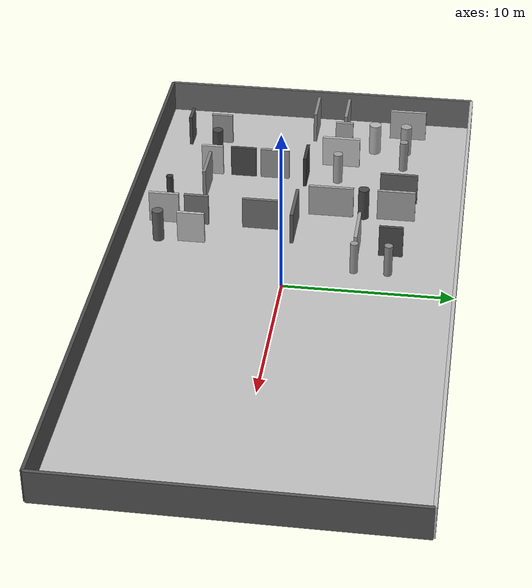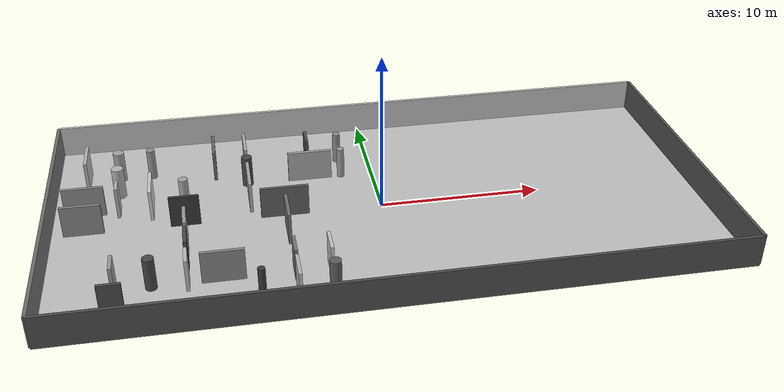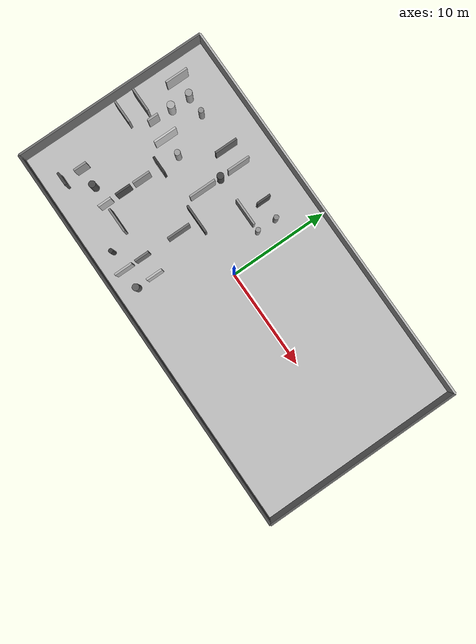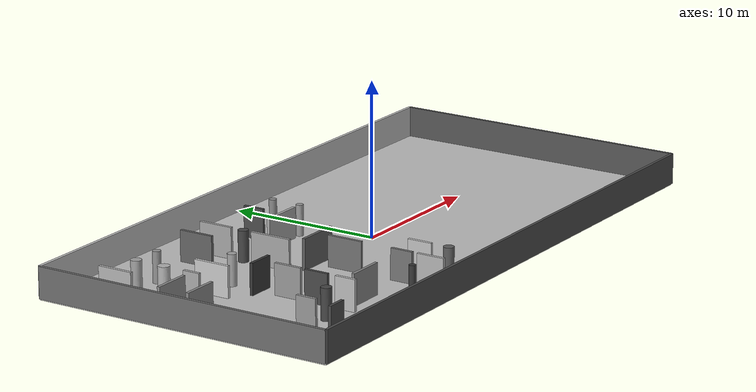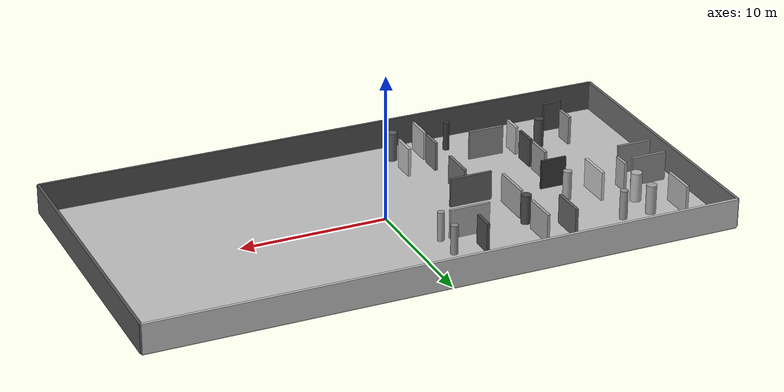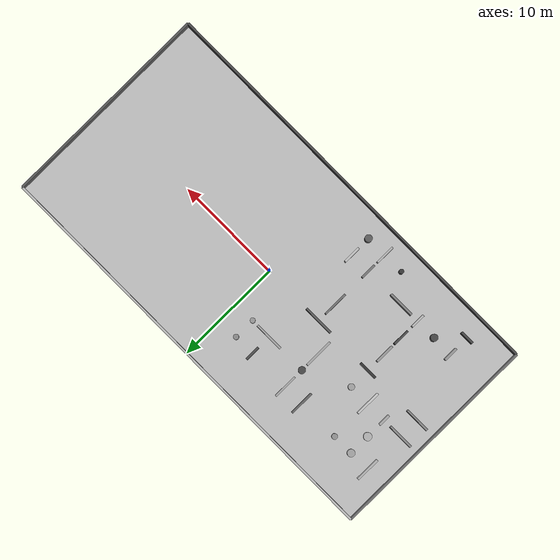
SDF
<sdf version="1.7">
 <world name="default">
  <model name="ground_plane">
   <static>true</static>
   <link name="link">
    <pose>0.0 0.0 -0.05 0 0 0</pose>
    <visual name="visual">
     <material>
      <ambient>0.7535816217733602 0.7535816217733602 0.7535816217733602 1</ambient>
      <diffuse>0.7535816217733602 0.7535816217733602 0.7535816217733602 1</diffuse>
     </material>
     <geometry><box><size>40.0 20.0 0.1</size></box></geometry>
    </visual>
    <collision name="collision">
     <geometry><box><size>40.0 20.0 0.1</size></box></geometry>
     <surface>
      <friction><ode><mu>100</mu><mu2>50.0</mu2><slip1>0.0</slip1><slip2>0.0</slip2></ode></friction>
      <contact><ode><kp>10000.0</kp><kd>100.0</kd></ode></contact>
     </surface>
    </collision>
   </link>
  </model>
  <model name="pn_wall_0">
   <static>true</static>
   <link name="link">
    <pose>-20.0 0.0 1.0 0 0 0</pose>
    <visual name="visual">
     <material>
      <ambient>0.4286124139974629 0.4286124139974629 0.4286124139974629 1</ambient>
      <diffuse>0.4286124139974629 0.4286124139974629 0.4286124139974629 1</diffuse>
     </material>
     <geometry><box><size>0.2 20.0 2.0</size></box></geometry>
    </visual>
    <collision name="collision">
     <geometry><box><size>0.2 20.0 2.0</size></box></geometry>
     <surface>
      <friction><ode><mu>100</mu><mu2>50.0</mu2><slip1>0.0</slip1><slip2>0.0</slip2></ode></friction>
      <contact><ode><kp>10000.0</kp><kd>100.0</kd></ode></contact>
     </surface>
    </collision>
   </link>
  </model>
  <model name="pn_wall_1">
   <static>true</static>
   <link name="link">
    <pose>20.0 0.0 1.0 0 0 0</pose>
    <visual name="visual">
     <material>
      <ambient>0.33843151178628517 0.33843151178628517 0.33843151178628517 1</ambient>
      <diffuse>0.33843151178628517 0.33843151178628517 0.33843151178628517 1</diffuse>
     </material>
     <geometry><box><size>0.2 20.0 2.0</size></box></geometry>
    </visual>
    <collision name="collision">
     <geometry><box><size>0.2 20.0 2.0</size></box></geometry>
     <surface>
      <friction><ode><mu>100</mu><mu2>50.0</mu2><slip1>0.0</slip1><slip2>0.0</slip2></ode></friction>
      <contact><ode><kp>10000.0</kp><kd>100.0</kd></ode></contact>
     </surface>
    </collision>
   </link>
  </model>
  <model name="pn_wall_2">
   <static>true</static>
   <link name="link">
    <pose>0.0 -10.0 1.0 0 0 0</pose>
    <visual name="visual">
     <material>
      <ambient>0.29962203458848113 0.29962203458848113 0.29962203458848113 1</ambient>
      <diffuse>0.29962203458848113 0.29962203458848113 0.29962203458848113 1</diffuse>
     </material>
     <geometry><box><size>40.0 0.2 2.0</size></box></geometry>
    </visual>
    <collision name="collision">
     <geometry><box><size>40.0 0.2 2.0</size></box></geometry>
     <surface>
      <friction><ode><mu>100</mu><mu2>50.0</mu2><slip1>0.0</slip1><slip2>0.0</slip2></ode></friction>
      <contact><ode><kp>10000.0</kp><kd>100.0</kd></ode></contact>
     </surface>
    </collision>
   </link>
  </model>
  <model name="pn_wall_3">
   <static>true</static>
   <link name="link">
    <pose>0.0 10.0 1.0 0 0 0</pose>
    <visual name="visual">
     <material>
      <ambient>0.7483000608636279 0.7483000608636279 0.7483000608636279 1</ambient>
      <diffuse>0.7483000608636279 0.7483000608636279 0.7483000608636279 1</diffuse>
     </material>
     <geometry><box><size>40.0 0.2 2.0</size></box></geometry>
    </visual>
    <collision name="collision">
     <geometry><box><size>40.0 0.2 2.0</size></box></geometry>
     <surface>
      <friction><ode><mu>100</mu><mu2>50.0</mu2><slip1>0.0</slip1><slip2>0.0</slip2></ode></friction>
      <contact><ode><kp>10000.0</kp><kd>100.0</kd></ode></contact>
     </surface>
    </collision>
   </link>
  </model>
  <model name="pn_wall_4">
   <static>true</static>
   <link name="link">
    <pose>-18.0 0.0 1.0 0 0 0</pose>
    <visual name="visual">
     <material>
      <ambient>0.5318356854175905 0.5318356854175905 0.5318356854175905 1</ambient>
      <diffuse>0.5318356854175905 0.5318356854175905 0.5318356854175905 1</diffuse>
     </material>
     <geometry><box><size>2.3802653146305346 0.2 2.0</size></box></geometry>
    </visual>
    <collision name="collision">
     <geometry><box><size>2.3802653146305346 0.2 2.0</size></box></geometry>
     <surface>
      <friction><ode><mu>100</mu><mu2>50.0</mu2><slip1>0.0</slip1><slip2>0.0</slip2></ode></friction>
      <contact><ode><kp>10000.0</kp><kd>100.0</kd></ode></contact>
     </surface>
    </collision>
   </link>
  </model>
  <model name="pn_wall_5">
   <static>true</static>
   <link name="link">
    <pose>-18.0 2.0 1.0 0 0 0</pose>
    <visual name="visual">
     <material>
      <ambient>0.5458567753851185 0.5458567753851185 0.5458567753851185 1</ambient>
      <diffuse>0.5458567753851185 0.5458567753851185 0.5458567753851185 1</diffuse>
     </material>
     <geometry><box><size>2.4632484132536256 0.2 2.0</size></box></geometry>
    </visual>
    <collision name="collision">
     <geometry><box><size>2.4632484132536256 0.2 2.0</size></box></geometry>
     <surface>
      <friction><ode><mu>100</mu><mu2>50.0</mu2><slip1>0.0</slip1><slip2>0.0</slip2></ode></friction>
      <contact><ode><kp>10000.0</kp><kd>100.0</kd></ode></contact>
     </surface>
    </collision>
   </link>
  </model>
  <model name="pn_wall_6">
   <static>true</static>
   <link name="link">
    <pose>-18.0 6.0 1.0 0 0 0</pose>
    <visual name="visual">
     <material>
      <ambient>0.7035788104757685 0.7035788104757685 0.7035788104757685 1</ambient>
      <diffuse>0.7035788104757685 0.7035788104757685 0.7035788104757685 1</diffuse>
     </material>
     <geometry><box><size>0.2 2.323161944714843 2.0</size></box></geometry>
    </visual>
    <collision name="collision">
     <geometry><box><size>0.2 2.323161944714843 2.0</size></box></geometry>
     <surface>
      <friction><ode><mu>100</mu><mu2>50.0</mu2><slip1>0.0</slip1><slip2>0.0</slip2></ode></friction>
      <contact><ode><kp>10000.0</kp><kd>100.0</kd></ode></contact>
     </surface>
    </collision>
   </link>
  </model>
  <model name="pn_wall_7">
   <static>true</static>
   <link name="link">
    <pose>-16.0 -8.0 1.0 0 0 0</pose>
    <visual name="visual">
     <material>
      <ambient>0.2899010344444406 0.2899010344444406 0.2899010344444406 1</ambient>
      <diffuse>0.2899010344444406 0.2899010344444406 0.2899010344444406 1</diffuse>
     </material>
     <geometry><box><size>1.3100988415876804 0.2 2.0</size></box></geometry>
    </visual>
    <collision name="collision">
     <geometry><box><size>1.3100988415876804 0.2 2.0</size></box></geometry>
     <surface>
      <friction><ode><mu>100</mu><mu2>50.0</mu2><slip1>0.0</slip1><slip2>0.0</slip2></ode></friction>
      <contact><ode><kp>10000.0</kp><kd>100.0</kd></ode></contact>
     </surface>
    </collision>
   </link>
  </model>
  <model name="pn_wall_8">
   <static>true</static>
   <link name="link">
    <pose>-16.0 -6.0 1.0 0 0 0</pose>
    <visual name="visual">
     <material>
      <ambient>0.5927931205535091 0.5927931205535091 0.5927931205535091 1</ambient>
      <diffuse>0.5927931205535091 0.5927931205535091 0.5927931205535091 1</diffuse>
     </material>
     <geometry><box><size>0.2 1.335021559260981 2.0</size></box></geometry>
    </visual>
    <collision name="collision">
     <geometry><box><size>0.2 1.335021559260981 2.0</size></box></geometry>
     <surface>
      <friction><ode><mu>100</mu><mu2>50.0</mu2><slip1>0.0</slip1><slip2>0.0</slip2></ode></friction>
      <contact><ode><kp>10000.0</kp><kd>100.0</kd></ode></contact>
     </surface>
    </collision>
   </link>
  </model>
  <model name="pn_wall_9">
   <static>true</static>
   <link name="link">
    <pose>-16.0 2.0 1.0 0 0 0</pose>
    <visual name="visual">
     <material>
      <ambient>0.6705885809112593 0.6705885809112593 0.6705885809112593 1</ambient>
      <diffuse>0.6705885809112593 0.6705885809112593 0.6705885809112593 1</diffuse>
     </material>
     <geometry><box><size>0.2 1.1189982908937144 2.0</size></box></geometry>
    </visual>
    <collision name="collision">
     <geometry><box><size>0.2 1.1189982908937144 2.0</size></box></geometry>
     <surface>
      <friction><ode><mu>100</mu><mu2>50.0</mu2><slip1>0.0</slip1><slip2>0.0</slip2></ode></friction>
      <contact><ode><kp>10000.0</kp><kd>100.0</kd></ode></contact>
     </surface>
    </collision>
   </link>
  </model>
  <model name="pn_pillar_10">
   <static>true</static>
   <link name="link">
    <pose>-16.0 4.0 1.0 0 0 0</pose>
    <visual name="visual">
     <material>
      <ambient>0.7046275216407931 0.7046275216407931 0.7046275216407931 1</ambient>
      <diffuse>0.7046275216407931 0.7046275216407931 0.7046275216407931 1</diffuse>
     </material>
     <geometry><cylinder><radius>0.3733783398297966</radius><length>2.0</length></cylinder></geometry>
    </visual>
    <collision name="collision">
     <geometry><cylinder><radius>0.3733783398297966</radius><length>2.0</length></cylinder></geometry>
     <surface>
      <friction><ode><mu>100</mu><mu2>50.0</mu2><slip1>0.0</slip1><slip2>0.0</slip2></ode></friction>
      <contact><ode><kp>10000.0</kp><kd>100.0</kd></ode></contact>
     </surface>
    </collision>
   </link>
  </model>
  <model name="pn_pillar_11">
   <static>true</static>
   <link name="link">
    <pose>-16.0 6.0 1.0 0 0 0</pose>
    <visual name="visual">
     <material>
      <ambient>0.6394040695213623 0.6394040695213623 0.6394040695213623 1</ambient>
      <diffuse>0.6394040695213623 0.6394040695213623 0.6394040695213623 1</diffuse>
     </material>
     <geometry><cylinder><radius>0.3452475970390524</radius><length>2.0</length></cylinder></geometry>
    </visual>
    <collision name="collision">
     <geometry><cylinder><radius>0.3452475970390524</radius><length>2.0</length></cylinder></geometry>
     <surface>
      <friction><ode><mu>100</mu><mu2>50.0</mu2><slip1>0.0</slip1><slip2>0.0</slip2></ode></friction>
      <contact><ode><kp>10000.0</kp><kd>100.0</kd></ode></contact>
     </surface>
    </collision>
   </link>
  </model>
  <model name="pn_pillar_12">
   <static>true</static>
   <link name="link">
    <pose>-14.0 -6.0 1.0 0 0 0</pose>
    <visual name="visual">
     <material>
      <ambient>0.2742605467082058 0.2742605467082058 0.2742605467082058 1</ambient>
      <diffuse>0.2742605467082058 0.2742605467082058 0.2742605467082058 1</diffuse>
     </material>
     <geometry><cylinder><radius>0.33399046066185506</radius><length>2.0</length></cylinder></geometry>
    </visual>
    <collision name="collision">
     <geometry><cylinder><radius>0.33399046066185506</radius><length>2.0</length></cylinder></geometry>
     <surface>
      <friction><ode><mu>100</mu><mu2>50.0</mu2><slip1>0.0</slip1><slip2>0.0</slip2></ode></friction>
      <contact><ode><kp>10000.0</kp><kd>100.0</kd></ode></contact>
     </surface>
    </collision>
   </link>
  </model>
  <model name="pn_wall_13">
   <static>true</static>
   <link name="link">
    <pose>-14.0 2.0 1.0 0 0 0</pose>
    <visual name="visual">
     <material>
      <ambient>0.788002958198232 0.788002958198232 0.788002958198232 1</ambient>
      <diffuse>0.788002958198232 0.788002958198232 0.788002958198232 1</diffuse>
     </material>
     <geometry><box><size>0.2 2.377703024459291 2.0</size></box></geometry>
    </visual>
    <collision name="collision">
     <geometry><box><size>0.2 2.377703024459291 2.0</size></box></geometry>
     <surface>
      <friction><ode><mu>100</mu><mu2>50.0</mu2><slip1>0.0</slip1><slip2>0.0</slip2></ode></friction>
      <contact><ode><kp>10000.0</kp><kd>100.0</kd></ode></contact>
     </surface>
    </collision>
   </link>
  </model>
  <model name="pn_pillar_14">
   <static>true</static>
   <link name="link">
    <pose>-14.0 6.0 1.0 0 0 0</pose>
    <visual name="visual">
     <material>
      <ambient>0.5719399527880967 0.5719399527880967 0.5719399527880967 1</ambient>
      <diffuse>0.5719399527880967 0.5719399527880967 0.5719399527880967 1</diffuse>
     </material>
     <geometry><cylinder><radius>0.2635600451012216</radius><length>2.0</length></cylinder></geometry>
    </visual>
    <collision name="collision">
     <geometry><cylinder><radius>0.2635600451012216</radius><length>2.0</length></cylinder></geometry>
     <surface>
      <friction><ode><mu>100</mu><mu2>50.0</mu2><slip1>0.0</slip1><slip2>0.0</slip2></ode></friction>
      <contact><ode><kp>10000.0</kp><kd>100.0</kd></ode></contact>
     </surface>
    </collision>
   </link>
  </model>
  <model name="pn_wall_15">
   <static>true</static>
   <link name="link">
    <pose>-12.0 -6.0 1.0 0 0 0</pose>
    <visual name="visual">
     <material>
      <ambient>0.7326681932655452 0.7326681932655452 0.7326681932655452 1</ambient>
      <diffuse>0.7326681932655452 0.7326681932655452 0.7326681932655452 1</diffuse>
     </material>
     <geometry><box><size>0.2 1.3641808842852248 2.0</size></box></geometry>
    </visual>
    <collision name="collision">
     <geometry><box><size>0.2 1.3641808842852248 2.0</size></box></geometry>
     <surface>
      <friction><ode><mu>100</mu><mu2>50.0</mu2><slip1>0.0</slip1><slip2>0.0</slip2></ode></friction>
      <contact><ode><kp>10000.0</kp><kd>100.0</kd></ode></contact>
     </surface>
    </collision>
   </link>
  </model>
  <model name="pn_wall_16">
   <static>true</static>
   <link name="link">
    <pose>-12.0 -4.0 1.0 0 0 0</pose>
    <visual name="visual">
     <material>
      <ambient>0.28754455792923955 0.28754455792923955 0.28754455792923955 1</ambient>
      <diffuse>0.28754455792923955 0.28754455792923955 0.28754455792923955 1</diffuse>
     </material>
     <geometry><box><size>0.2 1.602832591525506 2.0</size></box></geometry>
    </visual>
    <collision name="collision">
     <geometry><box><size>0.2 1.602832591525506 2.0</size></box></geometry>
     <surface>
      <friction><ode><mu>100</mu><mu2>50.0</mu2><slip1>0.0</slip1><slip2>0.0</slip2></ode></friction>
      <contact><ode><kp>10000.0</kp><kd>100.0</kd></ode></contact>
     </surface>
    </collision>
   </link>
  </model>
  <model name="pn_wall_17">
   <static>true</static>
   <link name="link">
    <pose>-12.0 -2.0 1.0 0 0 0</pose>
    <visual name="visual">
     <material>
      <ambient>0.5980038657329287 0.5980038657329287 0.5980038657329287 1</ambient>
      <diffuse>0.5980038657329287 0.5980038657329287 0.5980038657329287 1</diffuse>
     </material>
     <geometry><box><size>0.2 1.814382270298924 2.0</size></box></geometry>
    </visual>
    <collision name="collision">
     <geometry><box><size>0.2 1.814382270298924 2.0</size></box></geometry>
     <surface>
      <friction><ode><mu>100</mu><mu2>50.0</mu2><slip1>0.0</slip1><slip2>0.0</slip2></ode></friction>
      <contact><ode><kp>10000.0</kp><kd>100.0</kd></ode></contact>
     </surface>
    </collision>
   </link>
  </model>
  <model name="pn_wall_18">
   <static>true</static>
   <link name="link">
    <pose>-12.0 0.0 1.0 0 0 0</pose>
    <visual name="visual">
     <material>
      <ambient>0.21299886592869724 0.21299886592869724 0.21299886592869724 1</ambient>
      <diffuse>0.21299886592869724 0.21299886592869724 0.21299886592869724 1</diffuse>
     </material>
     <geometry><box><size>1.7896489237308992 0.2 2.0</size></box></geometry>
    </visual>
    <collision name="collision">
     <geometry><box><size>1.7896489237308992 0.2 2.0</size></box></geometry>
     <surface>
      <friction><ode><mu>100</mu><mu2>50.0</mu2><slip1>0.0</slip1><slip2>0.0</slip2></ode></friction>
      <contact><ode><kp>10000.0</kp><kd>100.0</kd></ode></contact>
     </surface>
    </collision>
   </link>
  </model>
  <model name="pn_pillar_19">
   <static>true</static>
   <link name="link">
    <pose>-12.0 2.0 1.0 0 0 0</pose>
    <visual name="visual">
     <material>
      <ambient>0.636927348681581 0.636927348681581 0.636927348681581 1</ambient>
      <diffuse>0.636927348681581 0.636927348681581 0.636927348681581 1</diffuse>
     </material>
     <geometry><cylinder><radius>0.2916834472801281</radius><length>2.0</length></cylinder></geometry>
    </visual>
    <collision name="collision">
     <geometry><cylinder><radius>0.2916834472801281</radius><length>2.0</length></cylinder></geometry>
     <surface>
      <friction><ode><mu>100</mu><mu2>50.0</mu2><slip1>0.0</slip1><slip2>0.0</slip2></ode></friction>
      <contact><ode><kp>10000.0</kp><kd>100.0</kd></ode></contact>
     </surface>
    </collision>
   </link>
  </model>
  <model name="pn_wall_20">
   <static>true</static>
   <link name="link">
    <pose>-10.0 -6.0 1.0 0 0 0</pose>
    <visual name="visual">
     <material>
      <ambient>0.5238723487917749 0.5238723487917749 0.5238723487917749 1</ambient>
      <diffuse>0.5238723487917749 0.5238723487917749 0.5238723487917749 1</diffuse>
     </material>
     <geometry><box><size>2.488883275981933 0.2 2.0</size></box></geometry>
    </visual>
    <collision name="collision">
     <geometry><box><size>2.488883275981933 0.2 2.0</size></box></geometry>
     <surface>
      <friction><ode><mu>100</mu><mu2>50.0</mu2><slip1>0.0</slip1><slip2>0.0</slip2></ode></friction>
      <contact><ode><kp>10000.0</kp><kd>100.0</kd></ode></contact>
     </surface>
    </collision>
   </link>
  </model>
  <model name="pn_wall_21">
   <static>true</static>
   <link name="link">
    <pose>-10.0 6.0 1.0 0 0 0</pose>
    <visual name="visual">
     <material>
      <ambient>0.39312229533342774 0.39312229533342774 0.39312229533342774 1</ambient>
      <diffuse>0.39312229533342774 0.39312229533342774 0.39312229533342774 1</diffuse>
     </material>
     <geometry><box><size>0.2 2.3102373996935617 2.0</size></box></geometry>
    </visual>
    <collision name="collision">
     <geometry><box><size>0.2 2.3102373996935617 2.0</size></box></geometry>
     <surface>
      <friction><ode><mu>100</mu><mu2>50.0</mu2><slip1>0.0</slip1><slip2>0.0</slip2></ode></friction>
      <contact><ode><kp>10000.0</kp><kd>100.0</kd></ode></contact>
     </surface>
    </collision>
   </link>
  </model>
  <model name="pn_pillar_22">
   <static>true</static>
   <link name="link">
    <pose>-8.0 -8.0 1.0 0 0 0</pose>
    <visual name="visual">
     <material>
      <ambient>0.22375779026859408 0.22375779026859408 0.22375779026859408 1</ambient>
      <diffuse>0.22375779026859408 0.22375779026859408 0.22375779026859408 1</diffuse>
     </material>
     <geometry><cylinder><radius>0.21314601110846346</radius><length>2.0</length></cylinder></geometry>
    </visual>
    <collision name="collision">
     <geometry><cylinder><radius>0.21314601110846346</radius><length>2.0</length></cylinder></geometry>
     <surface>
      <friction><ode><mu>100</mu><mu2>50.0</mu2><slip1>0.0</slip1><slip2>0.0</slip2></ode></friction>
      <contact><ode><kp>10000.0</kp><kd>100.0</kd></ode></contact>
     </surface>
    </collision>
   </link>
  </model>
  <model name="pn_wall_23">
   <static>true</static>
   <link name="link">
    <pose>-8.0 2.0 1.0 0 0 0</pose>
    <visual name="visual">
     <material>
      <ambient>0.6508217074220854 0.6508217074220854 0.6508217074220854 1</ambient>
      <diffuse>0.6508217074220854 0.6508217074220854 0.6508217074220854 1</diffuse>
     </material>
     <geometry><box><size>0.2 2.749182862813904 2.0</size></box></geometry>
    </visual>
    <collision name="collision">
     <geometry><box><size>0.2 2.749182862813904 2.0</size></box></geometry>
     <surface>
      <friction><ode><mu>100</mu><mu2>50.0</mu2><slip1>0.0</slip1><slip2>0.0</slip2></ode></friction>
      <contact><ode><kp>10000.0</kp><kd>100.0</kd></ode></contact>
     </surface>
    </collision>
   </link>
  </model>
  <model name="pn_pillar_24">
   <static>true</static>
   <link name="link">
    <pose>-8.0 4.0 1.0 0 0 0</pose>
    <visual name="visual">
     <material>
      <ambient>0.27659318698119 0.27659318698119 0.27659318698119 1</ambient>
      <diffuse>0.27659318698119 0.27659318698119 0.27659318698119 1</diffuse>
     </material>
     <geometry><cylinder><radius>0.3321010913031721</radius><length>2.0</length></cylinder></geometry>
    </visual>
    <collision name="collision">
     <geometry><cylinder><radius>0.3321010913031721</radius><length>2.0</length></cylinder></geometry>
     <surface>
      <friction><ode><mu>100</mu><mu2>50.0</mu2><slip1>0.0</slip1><slip2>0.0</slip2></ode></friction>
      <contact><ode><kp>10000.0</kp><kd>100.0</kd></ode></contact>
     </surface>
    </collision>
   </link>
  </model>
  <model name="pn_wall_25">
   <static>true</static>
   <link name="link">
    <pose>-8.0 6.0 1.0 0 0 0</pose>
    <visual name="visual">
     <material>
      <ambient>0.6497706133960912 0.6497706133960912 0.6497706133960912 1</ambient>
      <diffuse>0.6497706133960912 0.6497706133960912 0.6497706133960912 1</diffuse>
     </material>
     <geometry><box><size>0.2 2.3108775423446373 2.0</size></box></geometry>
    </visual>
    <collision name="collision">
     <geometry><box><size>0.2 2.3108775423446373 2.0</size></box></geometry>
     <surface>
      <friction><ode><mu>100</mu><mu2>50.0</mu2><slip1>0.0</slip1><slip2>0.0</slip2></ode></friction>
      <contact><ode><kp>10000.0</kp><kd>100.0</kd></ode></contact>
     </surface>
    </collision>
   </link>
  </model>
  <model name="pn_wall_26">
   <static>true</static>
   <link name="link">
    <pose>-6.0 -8.0 1.0 0 0 0</pose>
    <visual name="visual">
     <material>
      <ambient>0.7090417955792432 0.7090417955792432 0.7090417955792432 1</ambient>
      <diffuse>0.7090417955792432 0.7090417955792432 0.7090417955792432 1</diffuse>
     </material>
     <geometry><box><size>0.2 1.8367617815915576 2.0</size></box></geometry>
    </visual>
    <collision name="collision">
     <geometry><box><size>0.2 1.8367617815915576 2.0</size></box></geometry>
     <surface>
      <friction><ode><mu>100</mu><mu2>50.0</mu2><slip1>0.0</slip1><slip2>0.0</slip2></ode></friction>
      <contact><ode><kp>10000.0</kp><kd>100.0</kd></ode></contact>
     </surface>
    </collision>
   </link>
  </model>
  <model name="pn_wall_27">
   <static>true</static>
   <link name="link">
    <pose>-6.0 -6.0 1.0 0 0 0</pose>
    <visual name="visual">
     <material>
      <ambient>0.4624326424145555 0.4624326424145555 0.4624326424145555 1</ambient>
      <diffuse>0.4624326424145555 0.4624326424145555 0.4624326424145555 1</diffuse>
     </material>
     <geometry><box><size>0.2 1.4835069808454722 2.0</size></box></geometry>
    </visual>
    <collision name="collision">
     <geometry><box><size>0.2 1.4835069808454722 2.0</size></box></geometry>
     <surface>
      <friction><ode><mu>100</mu><mu2>50.0</mu2><slip1>0.0</slip1><slip2>0.0</slip2></ode></friction>
      <contact><ode><kp>10000.0</kp><kd>100.0</kd></ode></contact>
     </surface>
    </collision>
   </link>
  </model>
  <model name="pn_wall_28">
   <static>true</static>
   <link name="link">
    <pose>-6.0 -2.0 1.0 0 0 0</pose>
    <visual name="visual">
     <material>
      <ambient>0.44636770541485055 0.44636770541485055 0.44636770541485055 1</ambient>
      <diffuse>0.44636770541485055 0.44636770541485055 0.44636770541485055 1</diffuse>
     </material>
     <geometry><box><size>0.2 2.359907131225385 2.0</size></box></geometry>
    </visual>
    <collision name="collision">
     <geometry><box><size>0.2 2.359907131225385 2.0</size></box></geometry>
     <surface>
      <friction><ode><mu>100</mu><mu2>50.0</mu2><slip1>0.0</slip1><slip2>0.0</slip2></ode></friction>
      <contact><ode><kp>10000.0</kp><kd>100.0</kd></ode></contact>
     </surface>
    </collision>
   </link>
  </model>
  <model name="pn_wall_29">
   <static>true</static>
   <link name="link">
    <pose>-6.0 0.0 1.0 0 0 0</pose>
    <visual name="visual">
     <material>
      <ambient>0.3655651876723588 0.3655651876723588 0.3655651876723588 1</ambient>
      <diffuse>0.3655651876723588 0.3655651876723588 0.3655651876723588 1</diffuse>
     </material>
     <geometry><box><size>2.9352608720740356 0.2 2.0</size></box></geometry>
    </visual>
    <collision name="collision">
     <geometry><box><size>2.9352608720740356 0.2 2.0</size></box></geometry>
     <surface>
      <friction><ode><mu>100</mu><mu2>50.0</mu2><slip1>0.0</slip1><slip2>0.0</slip2></ode></friction>
      <contact><ode><kp>10000.0</kp><kd>100.0</kd></ode></contact>
     </surface>
    </collision>
   </link>
  </model>
  <model name="pn_pillar_30">
   <static>true</static>
   <link name="link">
    <pose>-4.0 -8.0 1.0 0 0 0</pose>
    <visual name="visual">
     <material>
      <ambient>0.36617689152321353 0.36617689152321353 0.36617689152321353 1</ambient>
      <diffuse>0.36617689152321353 0.36617689152321353 0.36617689152321353 1</diffuse>
     </material>
     <geometry><cylinder><radius>0.3372259575856378</radius><length>2.0</length></cylinder></geometry>
    </visual>
    <collision name="collision">
     <geometry><cylinder><radius>0.3372259575856378</radius><length>2.0</length></cylinder></geometry>
     <surface>
      <friction><ode><mu>100</mu><mu2>50.0</mu2><slip1>0.0</slip1><slip2>0.0</slip2></ode></friction>
      <contact><ode><kp>10000.0</kp><kd>100.0</kd></ode></contact>
     </surface>
    </collision>
   </link>
  </model>
  <model name="pn_wall_31">
   <static>true</static>
   <link name="link">
    <pose>-4.0 -6.0 1.0 0 0 0</pose>
    <visual name="visual">
     <material>
      <ambient>0.7547742796958332 0.7547742796958332 0.7547742796958332 1</ambient>
      <diffuse>0.7547742796958332 0.7547742796958332 0.7547742796958332 1</diffuse>
     </material>
     <geometry><box><size>0.2 1.651478153585104 2.0</size></box></geometry>
    </visual>
    <collision name="collision">
     <geometry><box><size>0.2 1.651478153585104 2.0</size></box></geometry>
     <surface>
      <friction><ode><mu>100</mu><mu2>50.0</mu2><slip1>0.0</slip1><slip2>0.0</slip2></ode></friction>
      <contact><ode><kp>10000.0</kp><kd>100.0</kd></ode></contact>
     </surface>
    </collision>
   </link>
  </model>
  <model name="pn_wall_32">
   <static>true</static>
   <link name="link">
    <pose>-4.0 4.0 1.0 0 0 0</pose>
    <visual name="visual">
     <material>
      <ambient>0.6506739293383402 0.6506739293383402 0.6506739293383402 1</ambient>
      <diffuse>0.6506739293383402 0.6506739293383402 0.6506739293383402 1</diffuse>
     </material>
     <geometry><box><size>2.770236660461755 0.2 2.0</size></box></geometry>
    </visual>
    <collision name="collision">
     <geometry><box><size>2.770236660461755 0.2 2.0</size></box></geometry>
     <surface>
      <friction><ode><mu>100</mu><mu2>50.0</mu2><slip1>0.0</slip1><slip2>0.0</slip2></ode></friction>
      <contact><ode><kp>10000.0</kp><kd>100.0</kd></ode></contact>
     </surface>
    </collision>
   </link>
  </model>
  <model name="pn_wall_33">
   <static>true</static>
   <link name="link">
    <pose>-4.0 6.0 1.0 0 0 0</pose>
    <visual name="visual">
     <material>
      <ambient>0.2985516021274377 0.2985516021274377 0.2985516021274377 1</ambient>
      <diffuse>0.2985516021274377 0.2985516021274377 0.2985516021274377 1</diffuse>
     </material>
     <geometry><box><size>0.2 1.4286327891375161 2.0</size></box></geometry>
    </visual>
    <collision name="collision">
     <geometry><box><size>0.2 1.4286327891375161 2.0</size></box></geometry>
     <surface>
      <friction><ode><mu>100</mu><mu2>50.0</mu2><slip1>0.0</slip1><slip2>0.0</slip2></ode></friction>
      <contact><ode><kp>10000.0</kp><kd>100.0</kd></ode></contact>
     </surface>
    </collision>
   </link>
  </model>
  <model name="pn_pillar_34">
   <static>true</static>
   <link name="link">
    <pose>-2.0 4.0 1.0 0 0 0</pose>
    <visual name="visual">
     <material>
      <ambient>0.5999323766266825 0.5999323766266825 0.5999323766266825 1</ambient>
      <diffuse>0.5999323766266825 0.5999323766266825 0.5999323766266825 1</diffuse>
     </material>
     <geometry><cylinder><radius>0.23612511078832277</radius><length>2.0</length></cylinder></geometry>
    </visual>
    <collision name="collision">
     <geometry><cylinder><radius>0.23612511078832277</radius><length>2.0</length></cylinder></geometry>
     <surface>
      <friction><ode><mu>100</mu><mu2>50.0</mu2><slip1>0.0</slip1><slip2>0.0</slip2></ode></friction>
      <contact><ode><kp>10000.0</kp><kd>100.0</kd></ode></contact>
     </surface>
    </collision>
   </link>
  </model>
  <model name="pn_pillar_35">
   <static>true</static>
   <link name="link">
    <pose>-2.0 6.0 1.0 0 0 0</pose>
    <visual name="visual">
     <material>
      <ambient>0.5402213988722759 0.5402213988722759 0.5402213988722759 1</ambient>
      <diffuse>0.5402213988722759 0.5402213988722759 0.5402213988722759 1</diffuse>
     </material>
     <geometry><cylinder><radius>0.24744162194079883</radius><length>2.0</length></cylinder></geometry>
    </visual>
    <collision name="collision">
     <geometry><cylinder><radius>0.24744162194079883</radius><length>2.0</length></cylinder></geometry>
     <surface>
      <friction><ode><mu>100</mu><mu2>50.0</mu2><slip1>0.0</slip1><slip2>0.0</slip2></ode></friction>
      <contact><ode><kp>10000.0</kp><kd>100.0</kd></ode></contact>
     </surface>
    </collision>
   </link>
  </model>
 </world>
</sdf>
